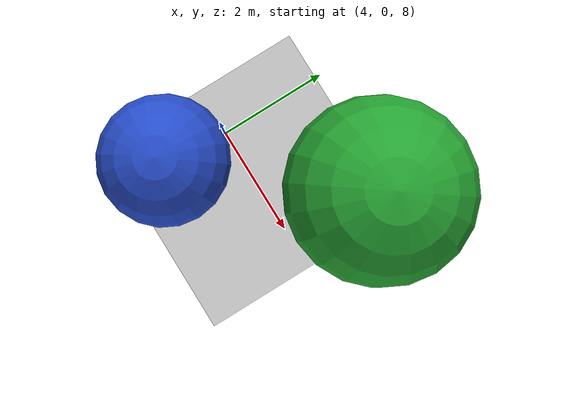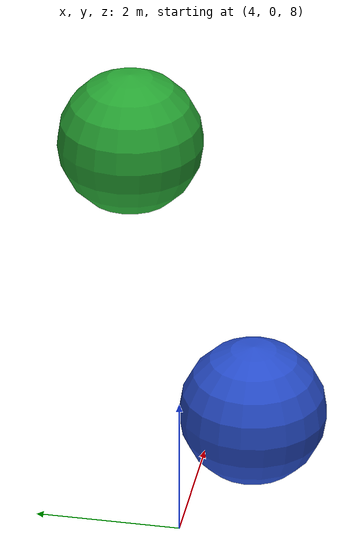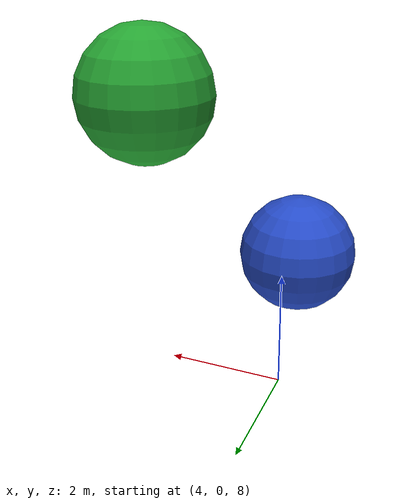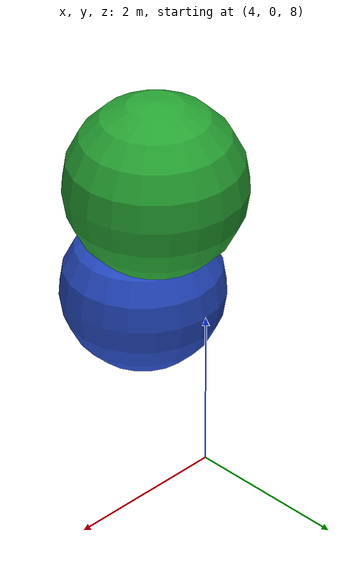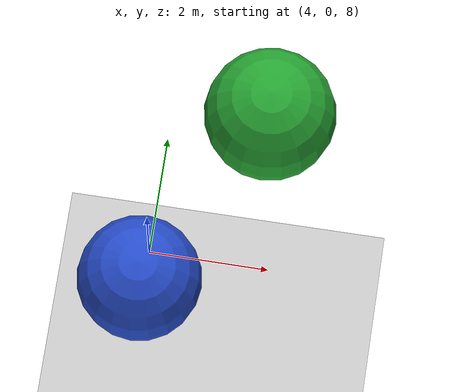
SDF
<?xml version="1.0" ?>
<sdf version="1.4">
  <world name="default">
    <include>
      <uri>model://ground_plane</uri>
    </include>
    <include>
      <uri>model://sun</uri>
    </include>

    <!-- Only one ROS interface plugin is required per world -->
    <plugin name="ros_interface_plugin" filename="librotors_gazebo_ros_interface_plugin.so"/>

    <spherical_coordinates>
      <surface_model>EARTH_WGS84</surface_model>
      <latitude_deg>47.3667</latitude_deg>
      <longitude_deg>8.5500</longitude_deg>
      <elevation>500.0</elevation>
      <heading_deg>0</heading_deg>
    </spherical_coordinates>

    <physics type='ode'>
      <ode>
        <solver>
          <type>quick</type>
          <iters>1000</iters>
          <sor>1.3</sor>
        </solver>
        <constraints>
          <cfm>0</cfm>
          <erp>0.2</erp>
          <contact_max_correcting_vel>100</contact_max_correcting_vel>
          <contact_surface_layer>0.001</contact_surface_layer>
        </constraints>
      </ode>
      <max_step_size>0.01</max_step_size>
      <real_time_factor>1</real_time_factor>
      <real_time_update_rate>100</real_time_update_rate>
      <gravity>0 0 -9.81</gravity>
    </physics>
<model name='sphere_obstacle_1'>
      <static>true</static>
      <!-- Original: -7.92 13.71 13.00 -->
      <!-- New: Tangent Left at Z=10 -->
      <pose>4.041 -1.0 10.0 0 0 0</pose>
      <link name='link'>
        <collision name='collision'>
          <geometry>
            <sphere><radius>1.00</radius></sphere>
          </geometry>
        </collision>
        <visual name='visual'>
          <geometry>
            <sphere><radius>1.00</radius></sphere>
          </geometry>
          <material>
            <script>
              <uri>file://media/materials/scripts/gazebo.material</uri>
              <name>Gazebo/Blue</name> <!-- Keep color for identification -->
            </script>
          </material>
        </visual>
      </link>
    </model>

    <model name='sphere_obstacle_2'>
      <static>true</static>
      <!-- Original: 13.75 0.00 18.00 -->
      <!-- New: Tangent Right at Z=13 -->
      <pose>5.774 1.0 13.0 0 0 0</pose>
      <link name='link'>
        <collision name='collision'>
          <geometry>
            <sphere><radius>1.00</radius></sphere>
          </geometry>
        </collision>
        <visual name='visual'>
          <geometry>
            <sphere><radius>1.00</radius></sphere>
          </geometry>
          <material>
            <script>
              <uri>file://media/materials/scripts/gazebo.material</uri>
              <name>Gazebo/Green</name> <!-- Keep color for identification -->
            </script>
          </material>
        </visual>
      </link>
    </model>

 </world>
</sdf>
